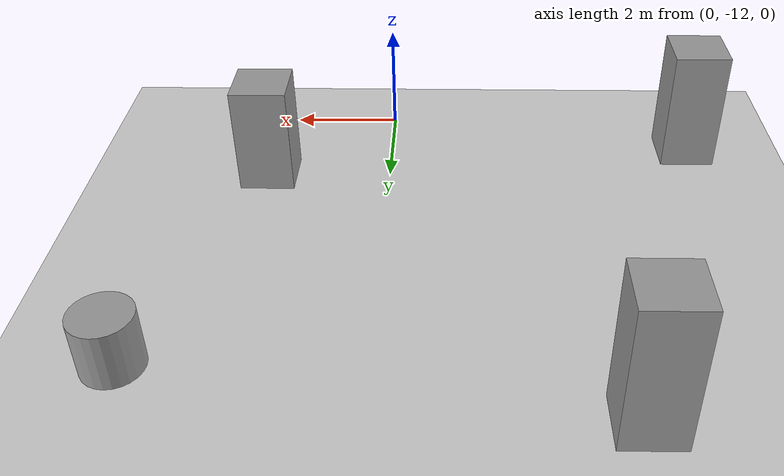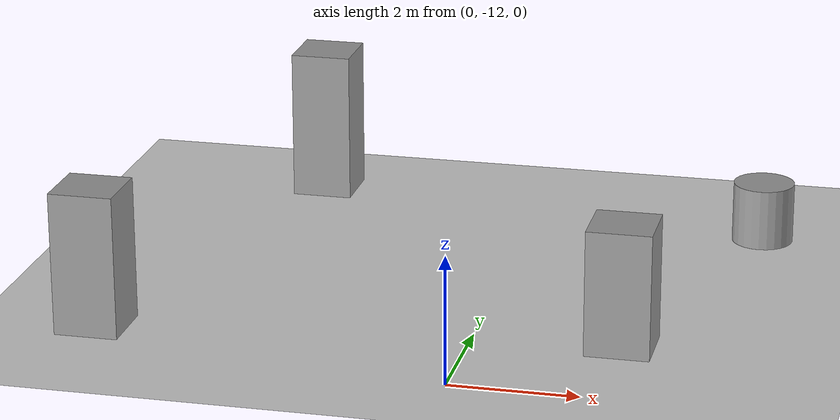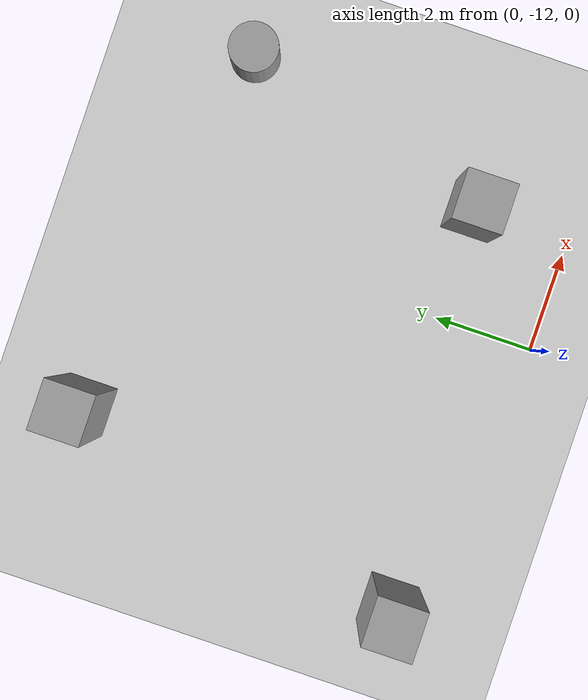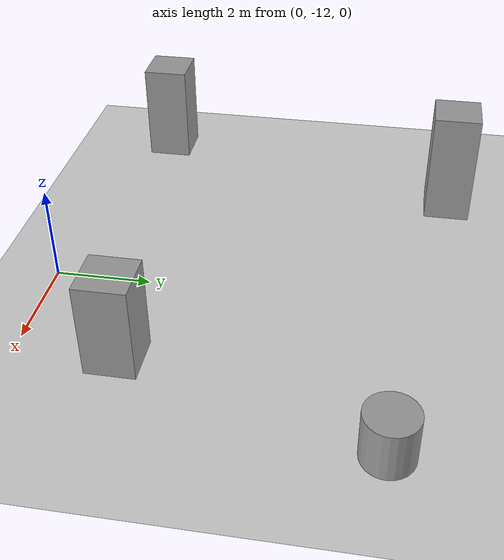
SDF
<sdf version="1.7">
 <world name="default">
  <model name="ground_plane">
   <static>1</static>
   <link name="link">
    <collision name="collision">
     <geometry><plane><normal>0 0 1</normal><size>100 100</size></plane></geometry>
     <surface><friction><ode><mu>100</mu><mu2>50</mu2></ode></friction></surface>
    </collision>
    <visual name="visual">
     <cast_shadows>0</cast_shadows>
     <geometry><plane><normal>0 0 1</normal><size>100 100</size></plane></geometry>
     <material>
      <script><uri>file://media/materials/scripts/gazebo.material</uri><name>Gazebo/Grey</name></script>
     </material>
    </visual>
   </link>
  </model>
  <model name="unit_box_clone_5">
   <pose>2.26918 -9.99154 0.989618 -2e-06 3e-06 0.000139</pose>
   <link name="link">
    <inertial>
     <mass>1</mass>
     <inertia>
      <ixx>0.166667</ixx>
      <ixy>0</ixy>
      <ixz>0</ixz>
      <iyy>0.166667</iyy>
      <iyz>0</iyz>
      <izz>0.166667</izz>
     </inertia>
    </inertial>
    <collision name="collision"><geometry><box><size>1 1 1.97924</size></box></geometry></collision>
    <visual name="visual">
     <geometry><box><size>1 1 1.97924</size></box></geometry>
     <material>
      <script><name>Gazebo/Grey</name><uri>file://media/materials/scripts/gazebo.material</uri></script>
     </material>
    </visual>
   </link>
  </model>
  <model name="unit_box_clone_6">
   <pose>-5.73227 -10.9159 1.13179 -1e-06 1e-06 0.000195</pose>
   <link name="link">
    <inertial>
     <mass>1</mass>
     <inertia>
      <ixx>0.166667</ixx>
      <ixy>0</ixy>
      <ixz>0</ixz>
      <iyy>0.166667</iyy>
      <iyz>0</iyz>
      <izz>0.166667</izz>
     </inertia>
    </inertial>
    <collision name="collision"><geometry><box><size>1 1 2.26358</size></box></geometry></collision>
    <visual name="visual">
     <geometry><box><size>1 1 2.26358</size></box></geometry>
     <material>
      <script><name>Gazebo/Grey</name><uri>file://media/materials/scripts/gazebo.material</uri></script>
     </material>
    </visual>
   </link>
  </model>
  <model name="unit_cylinder_clone_1">
   <pose>3.79399 -4.89134 0.499993 -3e-06 2e-06 0</pose>
   <link name="link">
    <inertial>
     <mass>1</mass>
     <inertia><ixx>0.145833</ixx><ixy>0</ixy><ixz>0</ixz><iyy>0.145833</iyy><iyz>0</iyz><izz>0.125</izz></inertia>
    </inertial>
    <collision name="collision">
     <geometry><cylinder><radius>0.5</radius><length>1</length></cylinder></geometry>
    </collision>
    <visual name="visual">
     <geometry><cylinder><radius>0.5</radius><length>1</length></cylinder></geometry>
     <material>
      <script><name>Gazebo/Grey</name><uri>file://media/materials/scripts/gazebo.material</uri></script>
     </material>
    </visual>
   </link>
  </model>
  <model name="unit_box_clone_clone">
   <pose>-3.89541 -3.90051 1.25137 -2e-06 2e-06 -0.000999</pose>
   <link name="link">
    <inertial>
     <mass>1</mass>
     <inertia>
      <ixx>0.166667</ixx>
      <ixy>0</ixy>
      <ixz>0</ixz>
      <iyy>0.166667</iyy>
      <iyz>0</iyz>
      <izz>0.166667</izz>
     </inertia>
    </inertial>
    <collision name="collision"><geometry><box><size>1 1 2.50274</size></box></geometry></collision>
    <visual name="visual">
     <geometry><box><size>1 1 2.50274</size></box></geometry>
     <material>
      <script><name>Gazebo/Grey</name><uri>file://media/materials/scripts/gazebo.material</uri></script>
     </material>
    </visual>
   </link>
  </model>
 </world>
</sdf>
